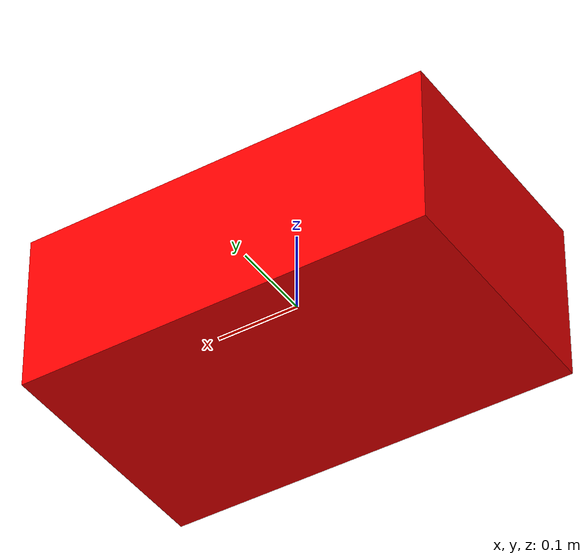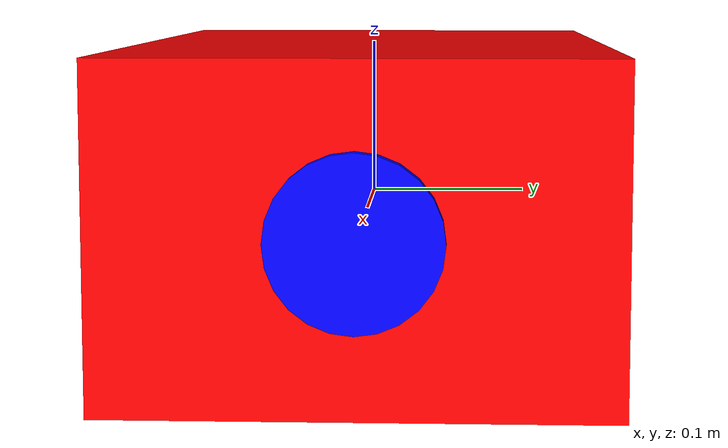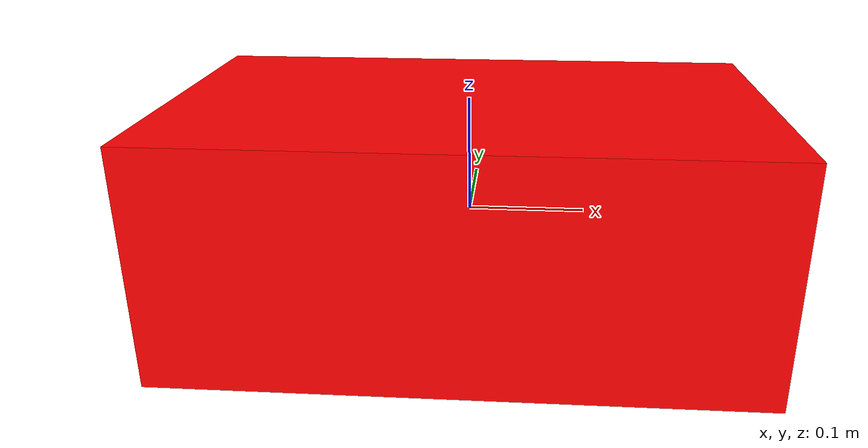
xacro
<?xml version="1.0"?>
<robot name="simple_box_robot" xmlns:xacro="http://ros.org/wiki/xacro">

  <!-- Base link as a red box -->
  <link name="base_link">
    <visual>
      <origin xyz="0 0 0" rpy="0 0 0"/>
      <geometry>
        <box size="0.5 0.3 0.2"/>  <!-- Length, Width, Height -->
      </geometry>
      <material name="red"/>
    </visual>
    <collision>
      <origin xyz="0 0 0" rpy="0 0 0"/>
      <geometry>
        <box size="0.5 0.3 0.2"/>
      </geometry>
    </collision>
    <inertial>
      <mass value="1.0"/>
      <origin xyz="0 0 0" rpy="0 0 0"/>
      <inertia ixx="0.001" ixy="0" ixz="0" iyy="0.001" iyz="0" izz="0.001"/>
    </inertial>
  </link>

  <!-- A wheel link as a blue cylinder -->
  <link name="wheel">
    <visual>
      <origin xyz="0 0 0" rpy="0 0 0"/>
      <geometry>
        <cylinder radius="0.05" length="0.02"/>
      </geometry>
      <material name="blue"/>
    </visual>
    <collision>
      <origin xyz="0 0 0" rpy="0 0 0"/>
      <geometry>
        <cylinder radius="0.05" length="0.02"/>
      </geometry>
    </collision>
  </link>

  <!-- Fixed joint connecting wheel to base_link -->
  <joint name="wheel_joint" type="fixed">
    <parent link="base_link"/>
    <child link="wheel"/>
    <origin xyz="0.25 0 0" rpy="0 1.5708 0"/>  <!-- Positioned to the right -->
  </joint>

  <!-- Materials -->
  <material name="red">
    <color rgba="1 0 0 1"/>
  </material>

  <material name="blue">
    <color rgba="0 0 1 1"/>
  </material>

</robot>
